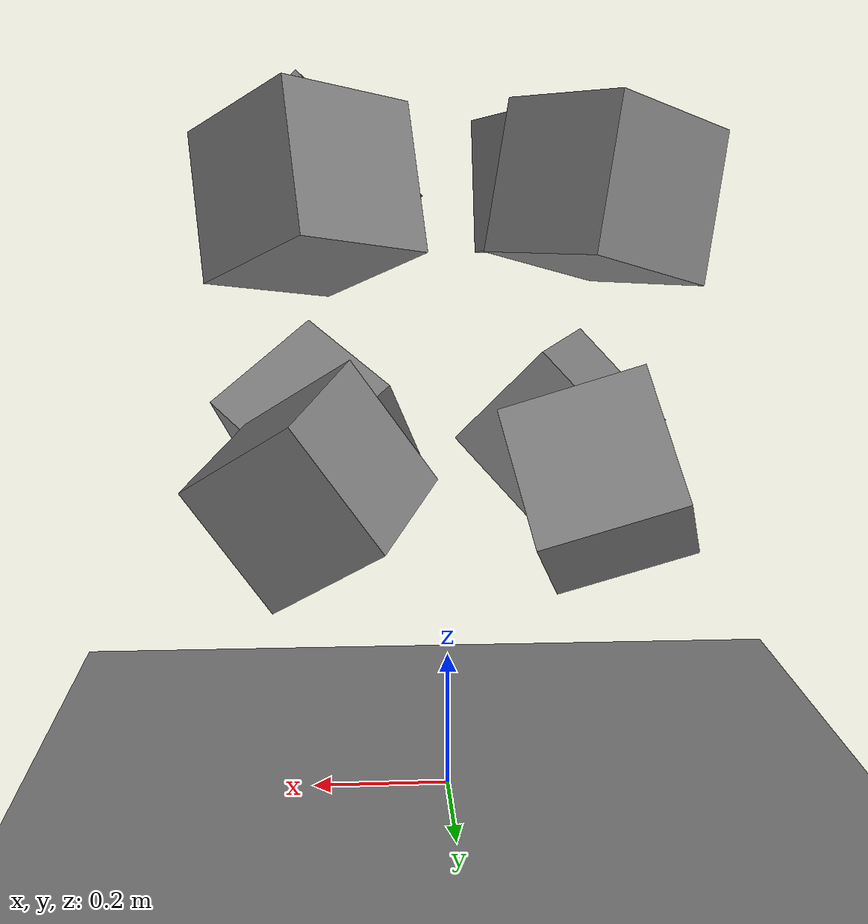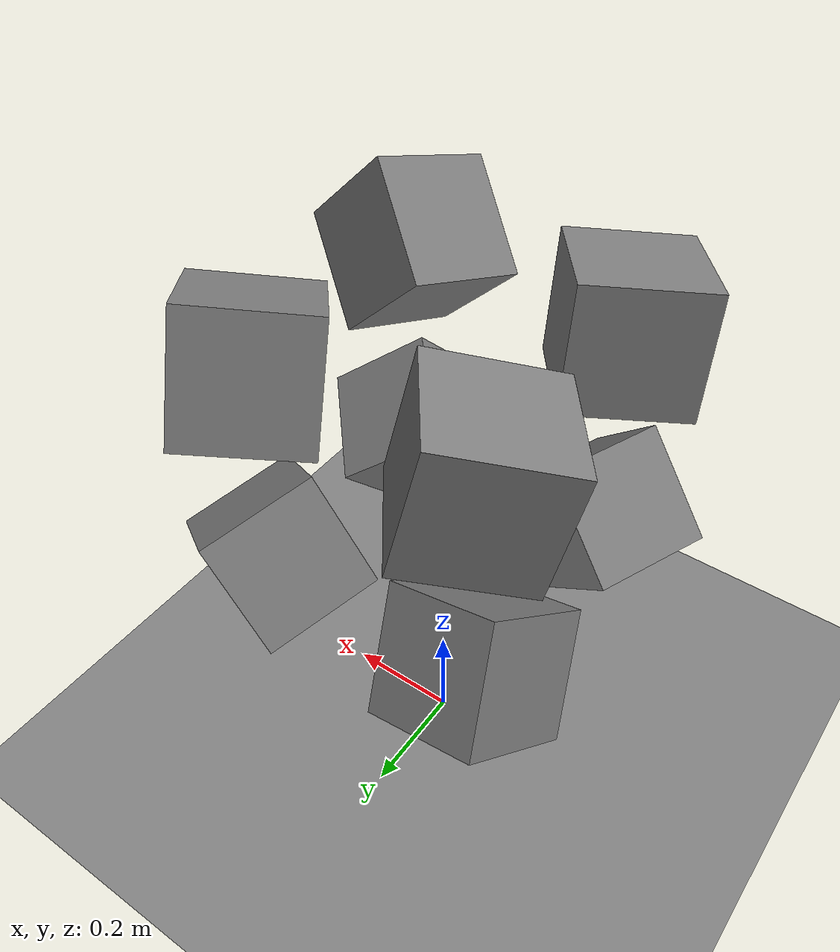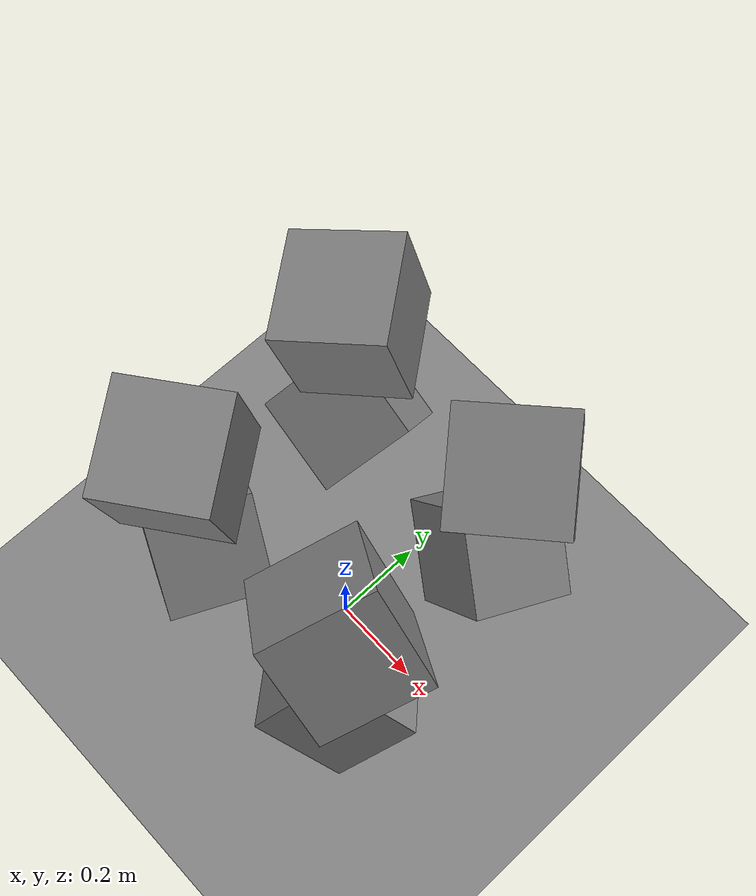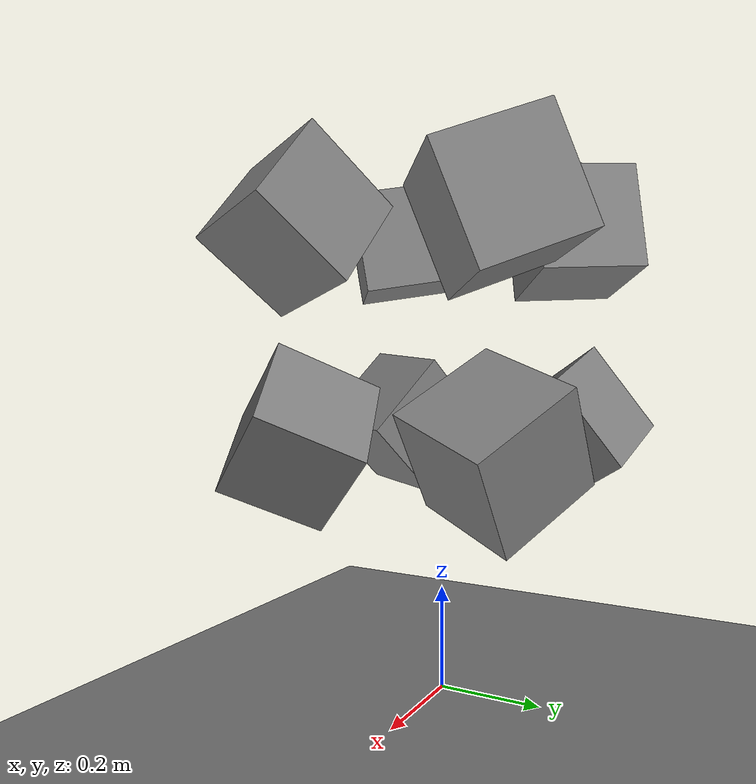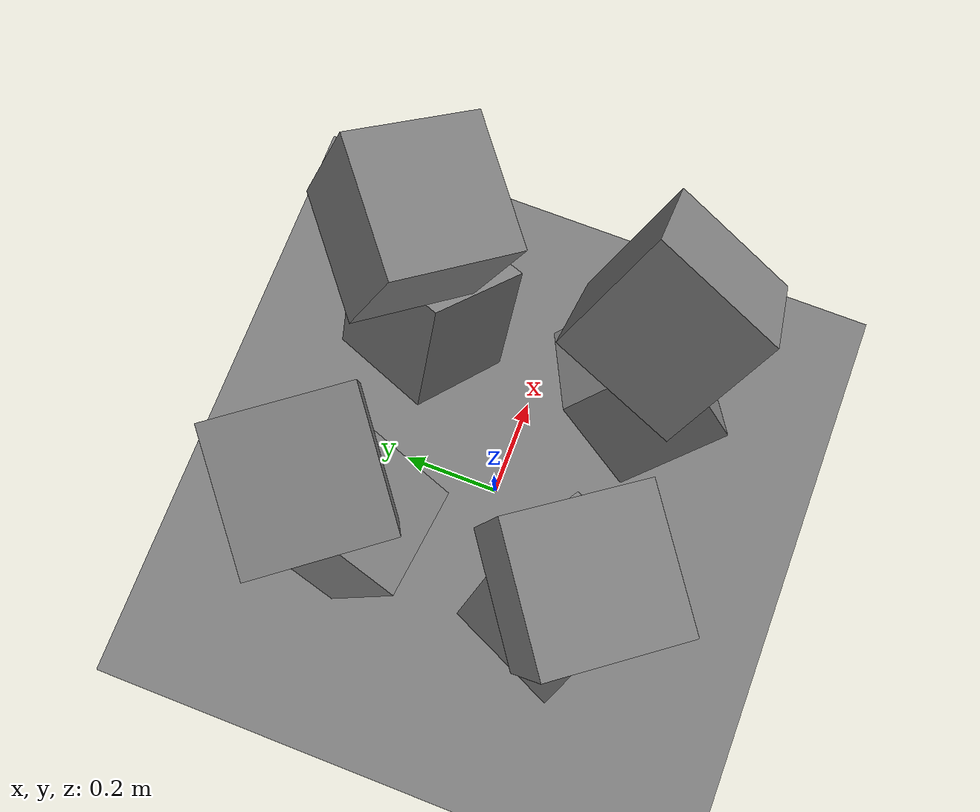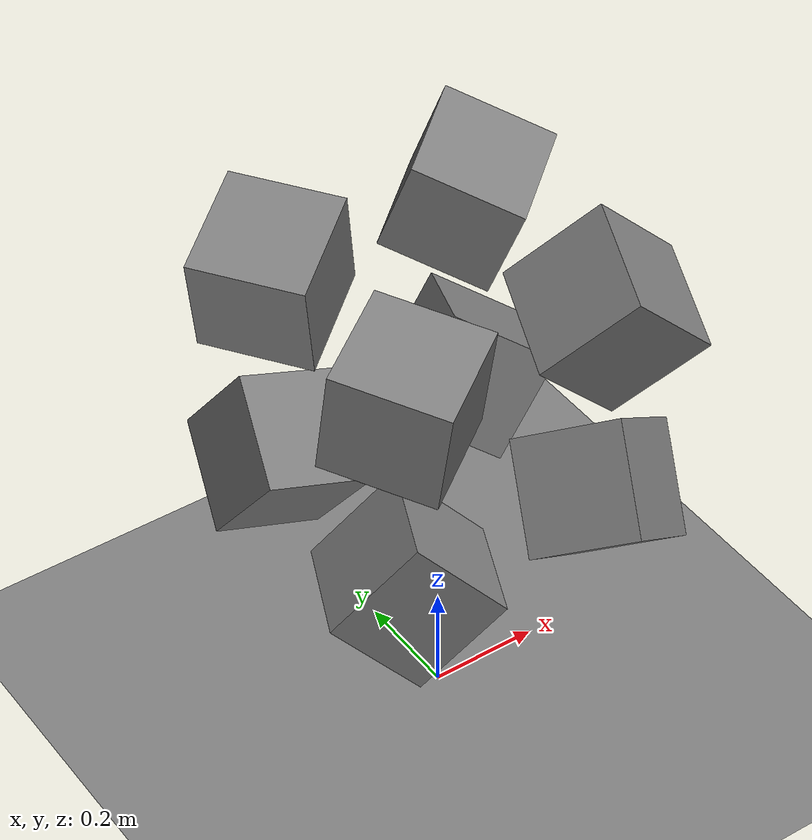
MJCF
<mujoco model="contact_pile">
  <option timestep="0.004166666666666667"/>
  <worldbody>
    <geom name="floor" type="plane" size="0 0 .05" friction="0.5 0.005 0.0001"/>
    <body name="box0" pos="-0.19 -0.19 0.5" quat="0.6749949641742874 -0.5990977286401065 0.412755973223359 0.12286666124728744">
      <freejoint/>
      <geom type="box" size=".1 .1 .1" mass="1" friction="0.5 0.005 0.0001"/>
    </body>
    <body name="box1" pos="0.19 -0.19 0.5" quat="0.04465691015634409 0.43913149896355363 0.8107076556580483 -0.3846067914776624">
      <freejoint/>
      <geom type="box" size=".1 .1 .1" mass="1" friction="0.5 0.005 0.0001"/>
    </body>
    <body name="box2" pos="-0.19 0.19 0.5" quat="0.112000538809344 -0.6057798104234177 0.7281685041563228 0.30042857744317153">
      <freejoint/>
      <geom type="box" size=".1 .1 .1" mass="1" friction="0.5 0.005 0.0001"/>
    </body>
    <body name="box3" pos="0.19 0.19 0.5" quat="0.5980429496893866 -0.710511490084613 0.3677413318767544 0.047795037546501905">
      <freejoint/>
      <geom type="box" size=".1 .1 .1" mass="1" friction="0.5 0.005 0.0001"/>
    </body>
    <body name="box4" pos="-0.19 -0.19 0.88" quat="0.3722685357792042 -0.5930422258011213 0.2717565704705467 0.6602010467211832">
      <freejoint/>
      <geom type="box" size=".1 .1 .1" mass="1" friction="0.5 0.005 0.0001"/>
    </body>
    <body name="box5" pos="0.19 -0.19 0.88" quat="0.5752883126537927 -0.1303889480679735 0.39283045163284586 -0.705497211770262">
      <freejoint/>
      <geom type="box" size=".1 .1 .1" mass="1" friction="0.5 0.005 0.0001"/>
    </body>
    <body name="box6" pos="-0.19 0.19 0.88" quat="0.11078189044865856 -0.3147791418457169 0.9409404038048628 0.05720682734636871">
      <freejoint/>
      <geom type="box" size=".1 .1 .1" mass="1" friction="0.5 0.005 0.0001"/>
    </body>
    <body name="box7" pos="0.19 0.19 0.88" quat="0.5172055945148682 0.7851193546789917 0.2331108757008736 0.24848599868189164">
      <freejoint/>
      <geom type="box" size=".1 .1 .1" mass="1" friction="0.5 0.005 0.0001"/>
    </body>
  </worldbody>
</mujoco>
